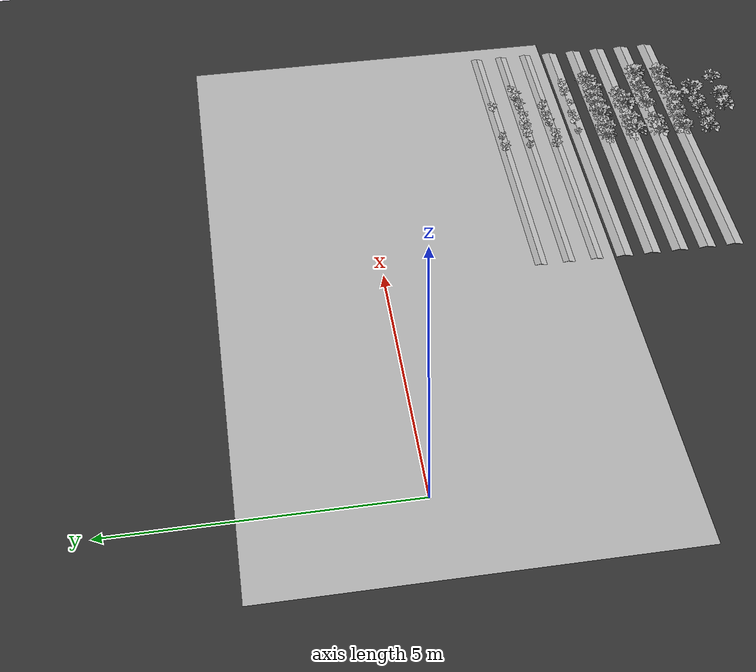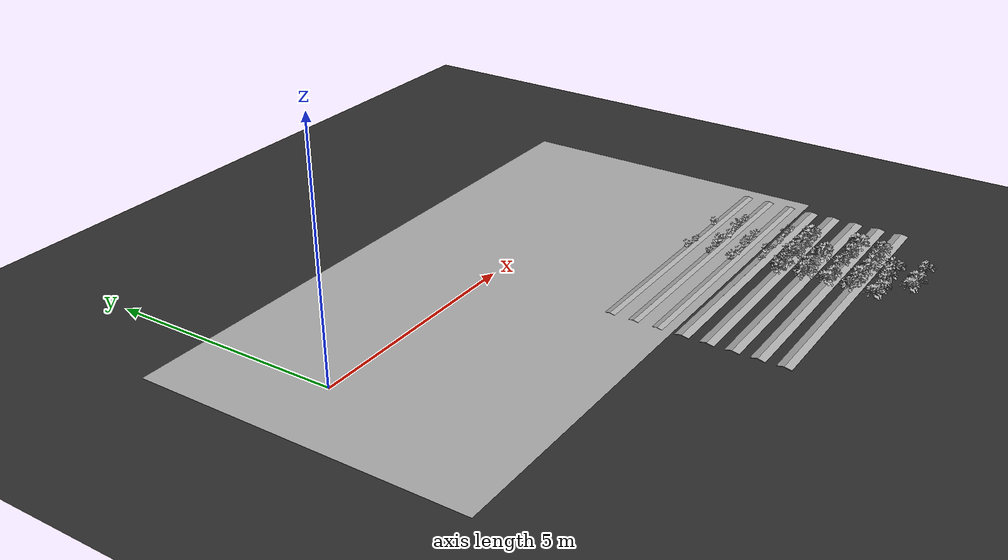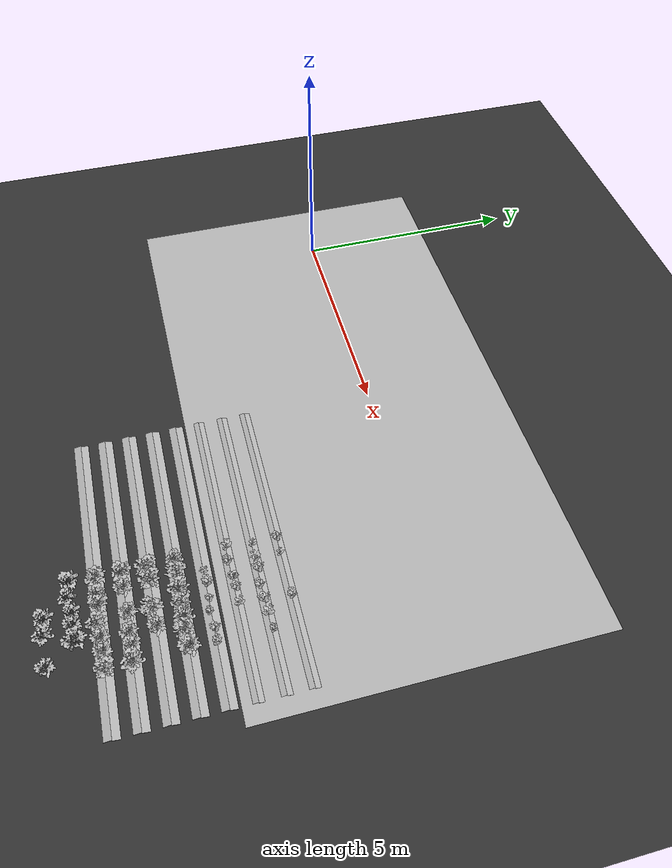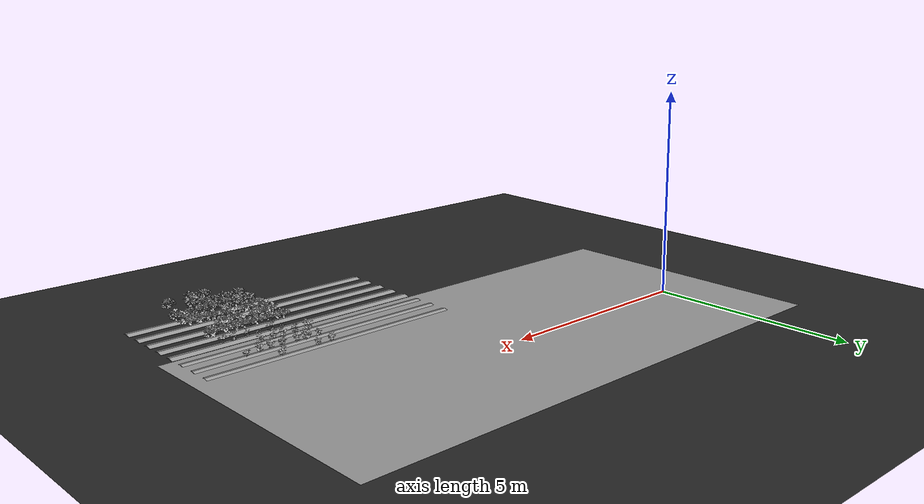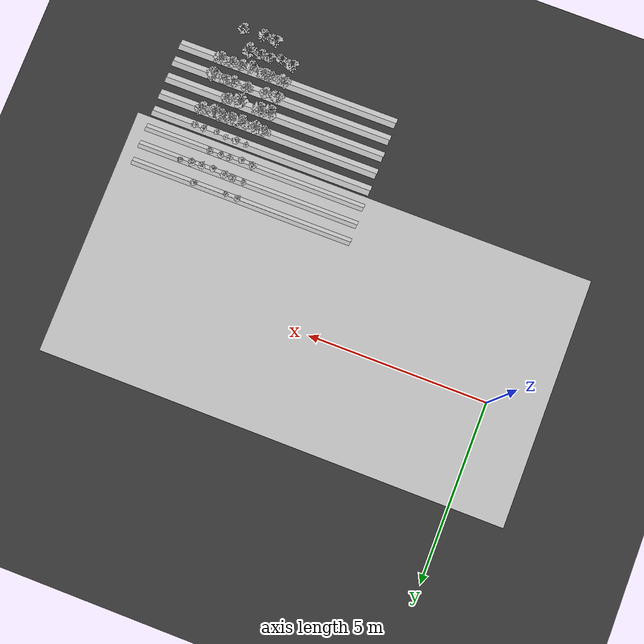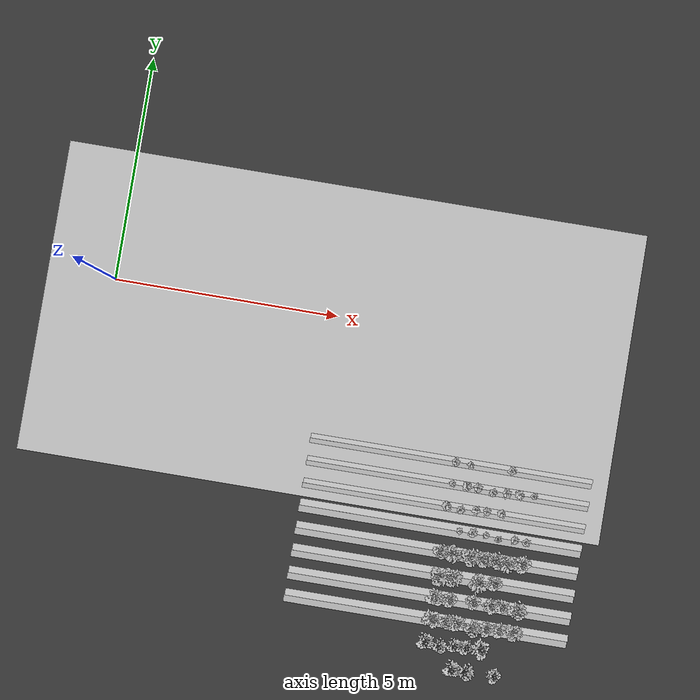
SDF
<sdf version="1.7">
 <world name="default">
  <model name="ground_plane">
   <static>1</static>
   <link name="link">
    <collision name="collision">
     <geometry><plane><normal>0 0 1</normal><size>100 100</size></plane></geometry>
     <surface>
      <contact><collide_bitmask>65535</collide_bitmask></contact>
      <friction><ode><mu>100</mu><mu2>50</mu2></ode></friction>
     </surface>
    </collision>
    <visual name="visual">
     <cast_shadows>0</cast_shadows>
     <geometry><plane><normal>0 0 1</normal><size>100 100</size></plane></geometry>
     <material>
      <ambient>0.2 0.2 0.2 1.0</ambient>
      <diffuse>0.2 0.2 0.2 1.0</diffuse>
      <specular>0.2 0.2 0.2 1.0</specular>
      <emissive>0.2 0.2 0.2 1.0</emissive>
     </material>
    </visual>
   </link>
  </model>
  <model name="ground">
   <pose>5 -0.5 0.01  3.141592654 0 0</pose>
   <static>true</static>
   <link name="body">
    <visual name="visual">
     <cast_shadows>0</cast_shadows>
     <geometry>
      <mesh><uri>file:///home/ifcosta/catkin_ws/src/cnn_line/worlds/models/ground.obj</uri></mesh>
     </geometry>
    </visual>
   </link>
  </model>
  <model name="plt_10028">
   <pose>8.43 -4.24 0.0144 0.0 0.0 0.63845</pose>
   <static>true</static>
   <link name="body">
    <visual name="visual">
     <geometry>
      <mesh><uri>file:///home/ifcosta/catkin_ws/src/cnn_line/worlds/models/plant10.obj</uri></mesh>
     </geometry>
    </visual>
   </link>
  </model>
  <model name="plt_10029">
   <pose>8.71 -4.23 0.011 0.0 0.0 -0.60464</pose>
   <static>true</static>
   <link name="body">
    <visual name="visual">
     <geometry>
      <mesh><uri>file:///home/ifcosta/catkin_ws/src/cnn_line/worlds/models/plant13.obj</uri></mesh>
     </geometry>
    </visual>
   </link>
  </model>
  <model name="plt_20029">
   <pose>8.71 -7.23 0.011 0.0 0.0 0.7532</pose>
   <static>true</static>
   <link name="body">
    <visual name="visual">
     <geometry>
      <mesh><uri>file:///home/ifcosta/catkin_ws/src/cnn_line/worlds/models/plant21.obj</uri></mesh>
     </geometry>
    </visual>
   </link>
  </model>
  <model name="plt_10030">
   <pose>9.02 -4.24 0.0133 0.0 0.0 -0.024472</pose>
   <static>true</static>
   <link name="body">
    <visual name="visual">
     <geometry>
      <mesh><uri>file:///home/ifcosta/catkin_ws/src/cnn_line/worlds/models/plant10.obj</uri></mesh>
     </geometry>
    </visual>
   </link>
  </model>
  <model name="plt_20030">
   <pose>9.02 -7.24 0.0133 0.0 0.0 0.075805</pose>
   <static>true</static>
   <link name="body">
    <visual name="visual">
     <geometry>
      <mesh><uri>file:///home/ifcosta/catkin_ws/src/cnn_line/worlds/models/plant21.obj</uri></mesh>
     </geometry>
    </visual>
   </link>
  </model>
  <model name="plt_10031">
   <pose>9.29 -4.28 0.0153 0.0 0.0 -0.66242</pose>
   <static>true</static>
   <link name="body">
    <visual name="visual">
     <geometry>
      <mesh><uri>file:///home/ifcosta/catkin_ws/src/cnn_line/worlds/models/plant11.obj</uri></mesh>
     </geometry>
    </visual>
   </link>
  </model>
  <model name="plt_10032">
   <pose>9.65 -4.24 0.0117 0.0 0.0 0.0086865</pose>
   <static>true</static>
   <link name="body">
    <visual name="visual">
     <geometry>
      <mesh><uri>file:///home/ifcosta/catkin_ws/src/cnn_line/worlds/models/plant12.obj</uri></mesh>
     </geometry>
    </visual>
   </link>
  </model>
  <model name="plt_20032">
   <pose>9.65 -7.24 0.0117 0.0 0.0 0.82298</pose>
   <static>true</static>
   <link name="body">
    <visual name="visual">
     <geometry>
      <mesh><uri>file:///home/ifcosta/catkin_ws/src/cnn_line/worlds/models/plant20.obj</uri></mesh>
     </geometry>
    </visual>
   </link>
  </model>
  <model name="plt_10033">
   <pose>9.9 -4.25 0.0164 0.0 0.0 -1.0571</pose>
   <static>true</static>
   <link name="body">
    <visual name="visual">
     <geometry>
      <mesh><uri>file:///home/ifcosta/catkin_ws/src/cnn_line/worlds/models/plant12.obj</uri></mesh>
     </geometry>
    </visual>
   </link>
  </model>
  <model name="slope_434">
   <pose>8.0 -4.25 -0.005 0.0 0.0 0.0</pose>
   <static>true</static>
   <link name="body">
    <visual name="visual">
     <geometry>
      <mesh><uri>file:///home/ifcosta/catkin_ws/src/cnn_line/worlds/models/slope.obj</uri></mesh>
     </geometry>
    </visual>
   </link>
  </model>
  <model name="slope_534">
   <pose>8.0 -4.25 -0.005 0.0 0.0 3.1416</pose>
   <static>true</static>
   <link name="body">
    <visual name="visual">
     <geometry>
      <mesh><uri>file:///home/ifcosta/catkin_ws/src/cnn_line/worlds/models/slope.obj</uri></mesh>
     </geometry>
    </visual>
   </link>
  </model>
  <model name="plt_10061">
   <pose>8.05 -3.73 0.0144 0.0 0.0 1.4881</pose>
   <static>true</static>
   <link name="body">
    <visual name="visual">
     <geometry>
      <mesh><uri>file:///home/ifcosta/catkin_ws/src/cnn_line/worlds/models/plant13.obj</uri></mesh>
     </geometry>
    </visual>
   </link>
  </model>
  <model name="plt_20061">
   <pose>8.05 -6.73 0.0144 0.0 0.0 0.89595</pose>
   <static>true</static>
   <link name="body">
    <visual name="visual">
     <geometry>
      <mesh><uri>file:///home/ifcosta/catkin_ws/src/cnn_line/worlds/models/plant21.obj</uri></mesh>
     </geometry>
    </visual>
   </link>
  </model>
  <model name="plt_10062">
   <pose>8.37 -3.78 0.018 0.0 0.0 -0.39613</pose>
   <static>true</static>
   <link name="body">
    <visual name="visual">
     <geometry>
      <mesh><uri>file:///home/ifcosta/catkin_ws/src/cnn_line/worlds/models/plant12.obj</uri></mesh>
     </geometry>
    </visual>
   </link>
  </model>
  <model name="plt_20062">
   <pose>8.37 -6.78 0.018 0.0 0.0 -0.47599</pose>
   <static>true</static>
   <link name="body">
    <visual name="visual">
     <geometry>
      <mesh><uri>file:///home/ifcosta/catkin_ws/src/cnn_line/worlds/models/plant20.obj</uri></mesh>
     </geometry>
    </visual>
   </link>
  </model>
  <model name="plt_10063">
   <pose>8.7 -3.72 0.015 0.0 0.0 -3.0379</pose>
   <static>true</static>
   <link name="body">
    <visual name="visual">
     <geometry>
      <mesh><uri>file:///home/ifcosta/catkin_ws/src/cnn_line/worlds/models/plant12.obj</uri></mesh>
     </geometry>
    </visual>
   </link>
  </model>
  <model name="plt_20063">
   <pose>8.7 -6.72 0.015 0.0 0.0 0.11277</pose>
   <static>true</static>
   <link name="body">
    <visual name="visual">
     <geometry>
      <mesh><uri>file:///home/ifcosta/catkin_ws/src/cnn_line/worlds/models/plant20.obj</uri></mesh>
     </geometry>
    </visual>
   </link>
  </model>
  <model name="plt_10064">
   <pose>8.95 -3.72 0.016 0.0 0.0 0.097755</pose>
   <static>true</static>
   <link name="body">
    <visual name="visual">
     <geometry>
      <mesh><uri>file:///home/ifcosta/catkin_ws/src/cnn_line/worlds/models/plant12.obj</uri></mesh>
     </geometry>
    </visual>
   </link>
  </model>
  <model name="plt_20064">
   <pose>8.95 -6.72 0.016 0.0 0.0 0.63569</pose>
   <static>true</static>
   <link name="body">
    <visual name="visual">
     <geometry>
      <mesh><uri>file:///home/ifcosta/catkin_ws/src/cnn_line/worlds/models/plant20.obj</uri></mesh>
     </geometry>
    </visual>
   </link>
  </model>
  <model name="plt_10065">
   <pose>9.27 -3.71 0.0154 0.0 0.0 1.1222</pose>
   <static>true</static>
   <link name="body">
    <visual name="visual">
     <geometry>
      <mesh><uri>file:///home/ifcosta/catkin_ws/src/cnn_line/worlds/models/plant12.obj</uri></mesh>
     </geometry>
    </visual>
   </link>
  </model>
  <model name="plt_20065">
   <pose>9.27 -6.71 0.0154 0.0 0.0 2.6617</pose>
   <static>true</static>
   <link name="body">
    <visual name="visual">
     <geometry>
      <mesh><uri>file:///home/ifcosta/catkin_ws/src/cnn_line/worlds/models/plant22.obj</uri></mesh>
     </geometry>
    </visual>
   </link>
  </model>
  <model name="slope_468">
   <pose>8.0 -3.75 -0.005 0.0 0.0 0.0</pose>
   <static>true</static>
   <link name="body">
    <visual name="visual">
     <geometry>
      <mesh><uri>file:///home/ifcosta/catkin_ws/src/cnn_line/worlds/models/slope.obj</uri></mesh>
     </geometry>
    </visual>
   </link>
  </model>
  <model name="slope_568">
   <pose>8.0 -3.75 -0.005 0.0 0.0 3.1416</pose>
   <static>true</static>
   <link name="body">
    <visual name="visual">
     <geometry>
      <mesh><uri>file:///home/ifcosta/catkin_ws/src/cnn_line/worlds/models/slope.obj</uri></mesh>
     </geometry>
    </visual>
   </link>
  </model>
  <model name="plt_10095">
   <pose>8.11 -3.23 0.0139 0.0 0.0 1.1633</pose>
   <static>true</static>
   <link name="body">
    <visual name="visual">
     <geometry>
      <mesh><uri>file:///home/ifcosta/catkin_ws/src/cnn_line/worlds/models/plant11.obj</uri></mesh>
     </geometry>
    </visual>
   </link>
  </model>
  <model name="plt_20095">
   <pose>8.11 -6.23 0.0139 0.0 0.0 2.3147</pose>
   <static>true</static>
   <link name="body">
    <visual name="visual">
     <geometry>
      <mesh><uri>file:///home/ifcosta/catkin_ws/src/cnn_line/worlds/models/plant21.obj</uri></mesh>
     </geometry>
    </visual>
   </link>
  </model>
  <model name="plt_10096">
   <pose>8.43 -3.23 0.0131 0.0 0.0 2.0877</pose>
   <static>true</static>
   <link name="body">
    <visual name="visual">
     <geometry>
      <mesh><uri>file:///home/ifcosta/catkin_ws/src/cnn_line/worlds/models/plant13.obj</uri></mesh>
     </geometry>
    </visual>
   </link>
  </model>
  <model name="plt_20096">
   <pose>8.43 -6.23 0.0131 0.0 0.0 -0.79558</pose>
   <static>true</static>
   <link name="body">
    <visual name="visual">
     <geometry>
      <mesh><uri>file:///home/ifcosta/catkin_ws/src/cnn_line/worlds/models/plant20.obj</uri></mesh>
     </geometry>
    </visual>
   </link>
  </model>
  <model name="plt_10097">
   <pose>8.67 -3.24 0.0174 0.0 0.0 0.090359</pose>
   <static>true</static>
   <link name="body">
    <visual name="visual">
     <geometry>
      <mesh><uri>file:///home/ifcosta/catkin_ws/src/cnn_line/worlds/models/plant13.obj</uri></mesh>
     </geometry>
    </visual>
   </link>
  </model>
  <model name="plt_20097">
   <pose>8.67 -6.24 0.0174 0.0 0.0 0.95446</pose>
   <static>true</static>
   <link name="body">
    <visual name="visual">
     <geometry>
      <mesh><uri>file:///home/ifcosta/catkin_ws/src/cnn_line/worlds/models/plant21.obj</uri></mesh>
     </geometry>
    </visual>
   </link>
  </model>
  <model name="plt_10098">
   <pose>9.01 -3.29 0.0137 0.0 0.0 -0.36061</pose>
   <static>true</static>
   <link name="body">
    <visual name="visual">
     <geometry>
      <mesh><uri>file:///home/ifcosta/catkin_ws/src/cnn_line/worlds/models/plant12.obj</uri></mesh>
     </geometry>
    </visual>
   </link>
  </model>
  <model name="plt_20098">
   <pose>9.01 -6.29 0.0137 0.0 0.0 0.030894</pose>
   <static>true</static>
   <link name="body">
    <visual name="visual">
     <geometry>
      <mesh><uri>file:///home/ifcosta/catkin_ws/src/cnn_line/worlds/models/plant21.obj</uri></mesh>
     </geometry>
    </visual>
   </link>
  </model>
  <model name="plt_10099">
   <pose>9.32 -3.26 0.0167 0.0 0.0 0.31376</pose>
   <static>true</static>
   <link name="body">
    <visual name="visual">
     <geometry>
      <mesh><uri>file:///home/ifcosta/catkin_ws/src/cnn_line/worlds/models/plant13.obj</uri></mesh>
     </geometry>
    </visual>
   </link>
  </model>
  <model name="plt_20099">
   <pose>9.32 -6.26 0.0167 0.0 0.0 0.93176</pose>
   <static>true</static>
   <link name="body">
    <visual name="visual">
     <geometry>
      <mesh><uri>file:///home/ifcosta/catkin_ws/src/cnn_line/worlds/models/plant20.obj</uri></mesh>
     </geometry>
    </visual>
   </link>
  </model>
  <model name="plt_10100">
   <pose>9.6 -3.24 0.0157 0.0 0.0 0.87641</pose>
   <static>true</static>
   <link name="body">
    <visual name="visual">
     <geometry>
      <mesh><uri>file:///home/ifcosta/catkin_ws/src/cnn_line/worlds/models/plant13.obj</uri></mesh>
     </geometry>
    </visual>
   </link>
  </model>
  <model name="plt_20100">
   <pose>9.6 -6.24 0.0157 0.0 0.0 0.82522</pose>
   <static>true</static>
   <link name="body">
    <visual name="visual">
     <geometry>
      <mesh><uri>file:///home/ifcosta/catkin_ws/src/cnn_line/worlds/models/plant20.obj</uri></mesh>
     </geometry>
    </visual>
   </link>
  </model>
  <model name="plt_10101">
   <pose>9.92 -3.22 0.016 0.0 0.0 -0.91404</pose>
   <static>true</static>
   <link name="body">
    <visual name="visual">
     <geometry>
      <mesh><uri>file:///home/ifcosta/catkin_ws/src/cnn_line/worlds/models/plant11.obj</uri></mesh>
     </geometry>
    </visual>
   </link>
  </model>
  <model name="plt_20101">
   <pose>9.92 -6.22 0.016 0.0 0.0 -0.49562</pose>
   <static>true</static>
   <link name="body">
    <visual name="visual">
     <geometry>
      <mesh><uri>file:///home/ifcosta/catkin_ws/src/cnn_line/worlds/models/plant21.obj</uri></mesh>
     </geometry>
    </visual>
   </link>
  </model>
  <model name="slope_502">
   <pose>8.0 -3.25 -0.005 0.0 0.0 0.0</pose>
   <static>true</static>
   <link name="body">
    <visual name="visual">
     <geometry>
      <mesh><uri>file:///home/ifcosta/catkin_ws/src/cnn_line/worlds/models/slope.obj</uri></mesh>
     </geometry>
    </visual>
   </link>
  </model>
  <model name="slope_602">
   <pose>8.0 -3.25 -0.005 0.0 0.0 3.1416</pose>
   <static>true</static>
   <link name="body">
    <visual name="visual">
     <geometry>
      <mesh><uri>file:///home/ifcosta/catkin_ws/src/cnn_line/worlds/models/slope.obj</uri></mesh>
     </geometry>
    </visual>
   </link>
  </model>
  <model name="slope_902">
   <pose>8.0 -6.25 -0.005 0.0 0.0 0.0</pose>
   <static>true</static>
   <link name="body">
    <visual name="visual">
     <geometry>
      <mesh><uri>file:///home/ifcosta/catkin_ws/src/cnn_line/worlds/models/slope.obj</uri></mesh>
     </geometry>
    </visual>
   </link>
  </model>
  <model name="slope_1002">
   <pose>8.0 -6.25 -0.005 0.0 0.0 3.1416</pose>
   <static>true</static>
   <link name="body">
    <visual name="visual">
     <geometry>
      <mesh><uri>file:///home/ifcosta/catkin_ws/src/cnn_line/worlds/models/slope.obj</uri></mesh>
     </geometry>
    </visual>
   </link>
  </model>
  <model name="plt_10129">
   <pose>8.1 -2.76 0.0155 0.0 0.0 0.019092</pose>
   <static>true</static>
   <link name="body">
    <visual name="visual">
     <geometry>
      <mesh><uri>file:///home/ifcosta/catkin_ws/src/cnn_line/worlds/models/plant12.obj</uri></mesh>
     </geometry>
    </visual>
   </link>
  </model>
  <model name="plt_20129">
   <pose>8.1 -5.76 0.0155 0.0 0.0 0.62107</pose>
   <static>true</static>
   <link name="body">
    <visual name="visual">
     <geometry>
      <mesh><uri>file:///home/ifcosta/catkin_ws/src/cnn_line/worlds/models/plant21.obj</uri></mesh>
     </geometry>
    </visual>
   </link>
  </model>
  <model name="plt_10130">
   <pose>8.44 -2.76 0.0182 0.0 0.0 1.4225</pose>
   <static>true</static>
   <link name="body">
    <visual name="visual">
     <geometry>
      <mesh><uri>file:///home/ifcosta/catkin_ws/src/cnn_line/worlds/models/plant11.obj</uri></mesh>
     </geometry>
    </visual>
   </link>
  </model>
  <model name="plt_20130">
   <pose>8.44 -5.76 0.0182 0.0 0.0 0.79292</pose>
   <static>true</static>
   <link name="body">
    <visual name="visual">
     <geometry>
      <mesh><uri>file:///home/ifcosta/catkin_ws/src/cnn_line/worlds/models/plant20.obj</uri></mesh>
     </geometry>
    </visual>
   </link>
  </model>
  <model name="plt_20132">
   <pose>8.96 -5.72 0.0173 0.0 0.0 0.91436</pose>
   <static>true</static>
   <link name="body">
    <visual name="visual">
     <geometry>
      <mesh><uri>file:///home/ifcosta/catkin_ws/src/cnn_line/worlds/models/plant20.obj</uri></mesh>
     </geometry>
    </visual>
   </link>
  </model>
  <model name="plt_10133">
   <pose>9.35 -2.75 0.0179 0.0 0.0 -0.71969</pose>
   <static>true</static>
   <link name="body">
    <visual name="visual">
     <geometry>
      <mesh><uri>file:///home/ifcosta/catkin_ws/src/cnn_line/worlds/models/plant12.obj</uri></mesh>
     </geometry>
    </visual>
   </link>
  </model>
  <model name="plt_20133">
   <pose>9.35 -5.75 0.0179 0.0 0.0 1.1776</pose>
   <static>true</static>
   <link name="body">
    <visual name="visual">
     <geometry>
      <mesh><uri>file:///home/ifcosta/catkin_ws/src/cnn_line/worlds/models/plant20.obj</uri></mesh>
     </geometry>
    </visual>
   </link>
  </model>
  <model name="plt_20134">
   <pose>9.6 -5.72 0.0144 0.0 0.0 0.22857</pose>
   <static>true</static>
   <link name="body">
    <visual name="visual">
     <geometry>
      <mesh><uri>file:///home/ifcosta/catkin_ws/src/cnn_line/worlds/models/plant20.obj</uri></mesh>
     </geometry>
    </visual>
   </link>
  </model>
  <model name="plt_20135">
   <pose>9.91 -5.74 0.0159 0.0 0.0 0.8493</pose>
   <static>true</static>
   <link name="body">
    <visual name="visual">
     <geometry>
      <mesh><uri>file:///home/ifcosta/catkin_ws/src/cnn_line/worlds/models/plant22.obj</uri></mesh>
     </geometry>
    </visual>
   </link>
  </model>
  <model name="slope_536">
   <pose>8.0 -2.75 -0.005 0.0 0.0 0.0</pose>
   <static>true</static>
   <link name="body">
    <visual name="visual">
     <geometry>
      <mesh><uri>file:///home/ifcosta/catkin_ws/src/cnn_line/worlds/models/slope.obj</uri></mesh>
     </geometry>
    </visual>
   </link>
  </model>
  <model name="slope_636">
   <pose>8.0 -2.75 -0.005 0.0 0.0 3.1416</pose>
   <static>true</static>
   <link name="body">
    <visual name="visual">
     <geometry>
      <mesh><uri>file:///home/ifcosta/catkin_ws/src/cnn_line/worlds/models/slope.obj</uri></mesh>
     </geometry>
    </visual>
   </link>
  </model>
  <model name="slope_936">
   <pose>8.0 -5.75 -0.005 0.0 0.0 0.0</pose>
   <static>true</static>
   <link name="body">
    <visual name="visual">
     <geometry>
      <mesh><uri>file:///home/ifcosta/catkin_ws/src/cnn_line/worlds/models/slope.obj</uri></mesh>
     </geometry>
    </visual>
   </link>
  </model>
  <model name="slope_1036">
   <pose>8.0 -5.75 -0.005 0.0 0.0 3.1416</pose>
   <static>true</static>
   <link name="body">
    <visual name="visual">
     <geometry>
      <mesh><uri>file:///home/ifcosta/catkin_ws/src/cnn_line/worlds/models/slope.obj</uri></mesh>
     </geometry>
    </visual>
   </link>
  </model>
  <model name="plt_20163">
   <pose>8.12 -5.27 0.0146 0.0 0.0 0.0022267</pose>
   <static>true</static>
   <link name="body">
    <visual name="visual">
     <geometry>
      <mesh><uri>file:///home/ifcosta/catkin_ws/src/cnn_line/worlds/models/plant22.obj</uri></mesh>
     </geometry>
    </visual>
   </link>
  </model>
  <model name="plt_20164">
   <pose>8.41 -5.24 0.0141 0.0 0.0 0.11327</pose>
   <static>true</static>
   <link name="body">
    <visual name="visual">
     <geometry>
      <mesh><uri>file:///home/ifcosta/catkin_ws/src/cnn_line/worlds/models/plant22.obj</uri></mesh>
     </geometry>
    </visual>
   </link>
  </model>
  <model name="plt_20166">
   <pose>9.0 -5.28 0.0137 0.0 0.0 -0.72989</pose>
   <static>true</static>
   <link name="body">
    <visual name="visual">
     <geometry>
      <mesh><uri>file:///home/ifcosta/catkin_ws/src/cnn_line/worlds/models/plant22.obj</uri></mesh>
     </geometry>
    </visual>
   </link>
  </model>
  <model name="plt_20167">
   <pose>9.36 -5.25 0.0137 0.0 0.0 0.55293</pose>
   <static>true</static>
   <link name="body">
    <visual name="visual">
     <geometry>
      <mesh><uri>file:///home/ifcosta/catkin_ws/src/cnn_line/worlds/models/plant20.obj</uri></mesh>
     </geometry>
    </visual>
   </link>
  </model>
  <model name="slope_970">
   <pose>8.0 -5.25 -0.005 0.0 0.0 0.0</pose>
   <static>true</static>
   <link name="body">
    <visual name="visual">
     <geometry>
      <mesh><uri>file:///home/ifcosta/catkin_ws/src/cnn_line/worlds/models/slope.obj</uri></mesh>
     </geometry>
    </visual>
   </link>
  </model>
  <model name="slope_1070">
   <pose>8.0 -5.25 -0.005 0.0 0.0 3.1416</pose>
   <static>true</static>
   <link name="body">
    <visual name="visual">
     <geometry>
      <mesh><uri>file:///home/ifcosta/catkin_ws/src/cnn_line/worlds/models/slope.obj</uri></mesh>
     </geometry>
    </visual>
   </link>
  </model>
  <model name="plt_20197">
   <pose>8.07 -4.74 0.0148 0.0 0.0 -0.76323</pose>
   <static>true</static>
   <link name="body">
    <visual name="visual">
     <geometry>
      <mesh><uri>file:///home/ifcosta/catkin_ws/src/cnn_line/worlds/models/plant20.obj</uri></mesh>
     </geometry>
    </visual>
   </link>
  </model>
  <model name="plt_20198">
   <pose>8.35 -4.74 0.0157 0.0 0.0 -1.0905</pose>
   <static>true</static>
   <link name="body">
    <visual name="visual">
     <geometry>
      <mesh><uri>file:///home/ifcosta/catkin_ws/src/cnn_line/worlds/models/plant21.obj</uri></mesh>
     </geometry>
    </visual>
   </link>
  </model>
  <model name="plt_20199">
   <pose>8.73 -4.74 0.0171 0.0 0.0 0.35125</pose>
   <static>true</static>
   <link name="body">
    <visual name="visual">
     <geometry>
      <mesh><uri>file:///home/ifcosta/catkin_ws/src/cnn_line/worlds/models/plant22.obj</uri></mesh>
     </geometry>
    </visual>
   </link>
  </model>
  <model name="plt_20200">
   <pose>9.03 -4.74 0.0139 0.0 0.0 -0.48386</pose>
   <static>true</static>
   <link name="body">
    <visual name="visual">
     <geometry>
      <mesh><uri>file:///home/ifcosta/catkin_ws/src/cnn_line/worlds/models/plant21.obj</uri></mesh>
     </geometry>
    </visual>
   </link>
  </model>
  <model name="plt_20201">
   <pose>9.29 -4.74 0.0139 0.0 0.0 0.087201</pose>
   <static>true</static>
   <link name="body">
    <visual name="visual">
     <geometry>
      <mesh><uri>file:///home/ifcosta/catkin_ws/src/cnn_line/worlds/models/plant21.obj</uri></mesh>
     </geometry>
    </visual>
   </link>
  </model>
  <model name="plt_20202">
   <pose>9.54 -4.77 0.0184 0.0 0.0 -2.0116</pose>
   <static>true</static>
   <link name="body">
    <visual name="visual">
     <geometry>
      <mesh><uri>file:///home/ifcosta/catkin_ws/src/cnn_line/worlds/models/plant21.obj</uri></mesh>
     </geometry>
    </visual>
   </link>
  </model>
  <model name="plt_20203">
   <pose>9.89 -4.74 0.014 0.0 0.0 1.633</pose>
   <static>true</static>
   <link name="body">
    <visual name="visual">
     <geometry>
      <mesh><uri>file:///home/ifcosta/catkin_ws/src/cnn_line/worlds/models/plant21.obj</uri></mesh>
     </geometry>
    </visual>
   </link>
  </model>
  <model name="slope_1004">
   <pose>8.0 -4.75 -0.005 0.0 0.0 0.0</pose>
   <static>true</static>
   <link name="body">
    <visual name="visual">
     <geometry>
      <mesh><uri>file:///home/ifcosta/catkin_ws/src/cnn_line/worlds/models/slope.obj</uri></mesh>
     </geometry>
    </visual>
   </link>
  </model>
  <model name="slope_1104">
   <pose>8.0 -4.75 -0.005 0.0 0.0 3.1416</pose>
   <static>true</static>
   <link name="body">
    <visual name="visual">
     <geometry>
      <mesh><uri>file:///home/ifcosta/catkin_ws/src/cnn_line/worlds/models/slope.obj</uri></mesh>
     </geometry>
    </visual>
   </link>
  </model>
 </world>
</sdf>
